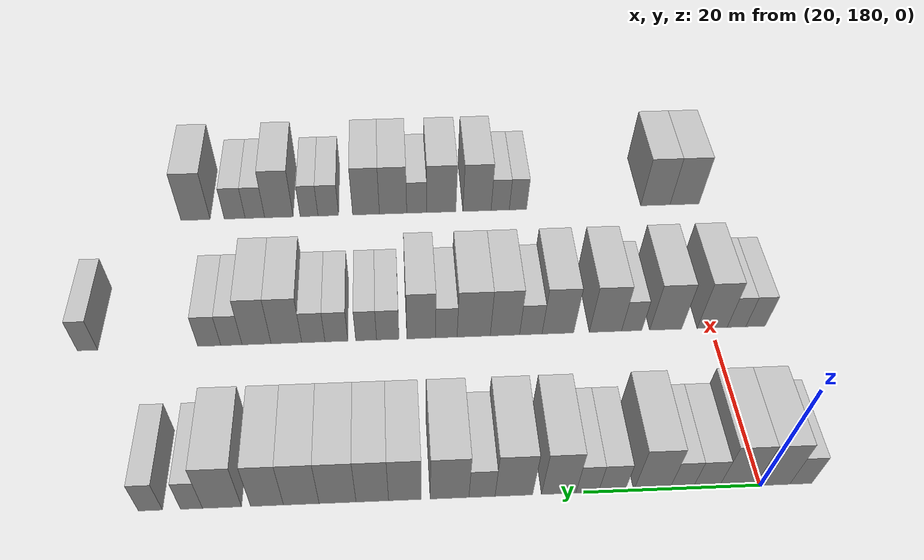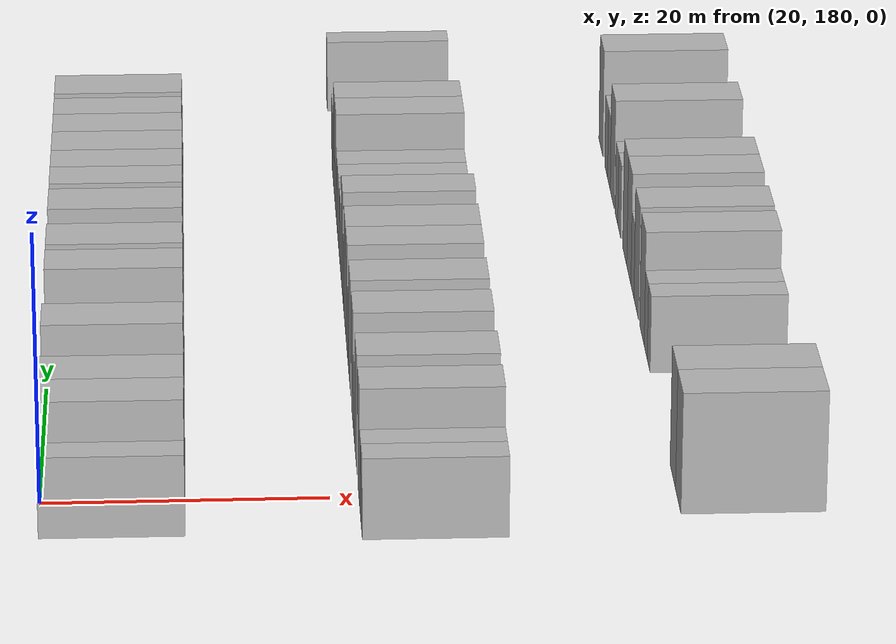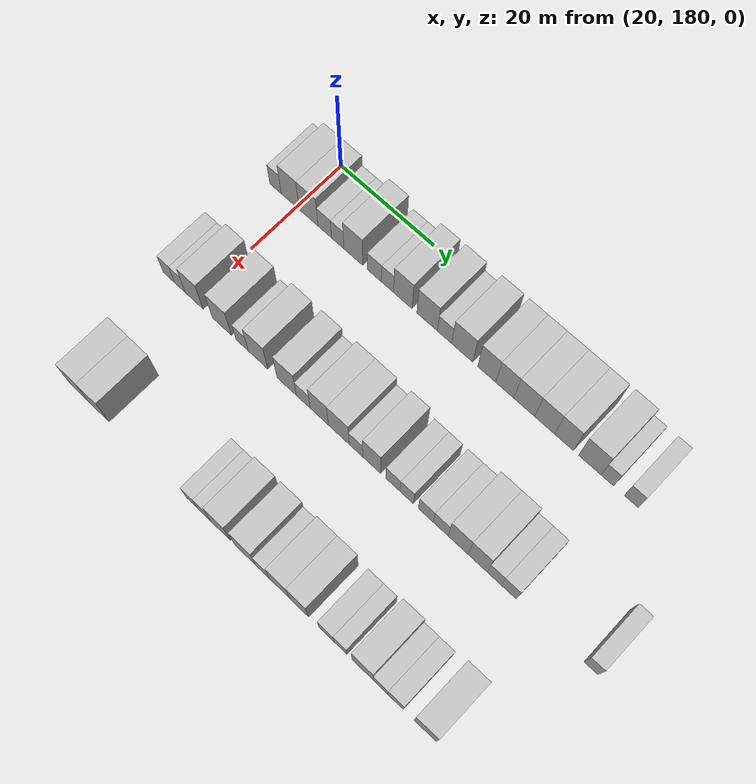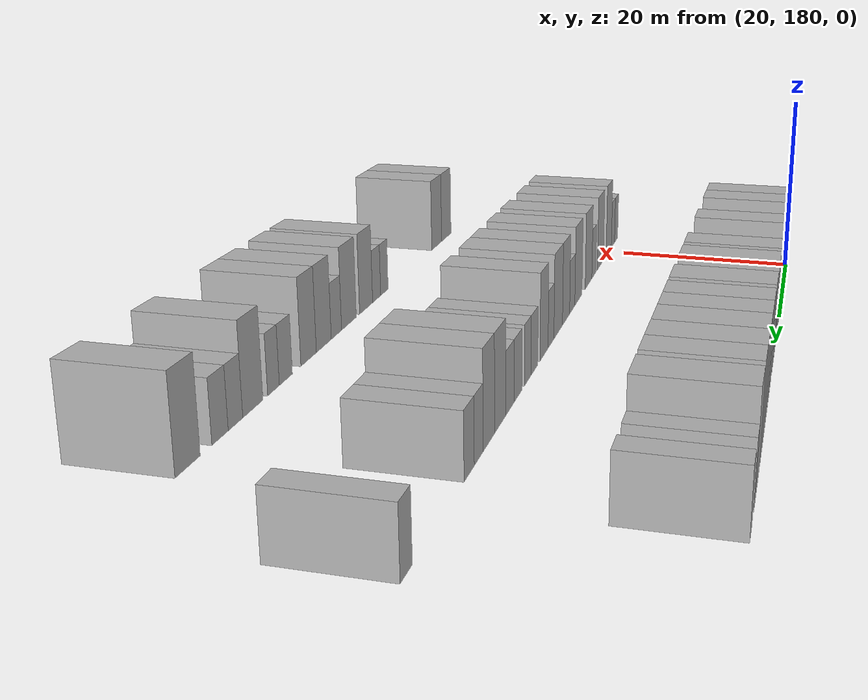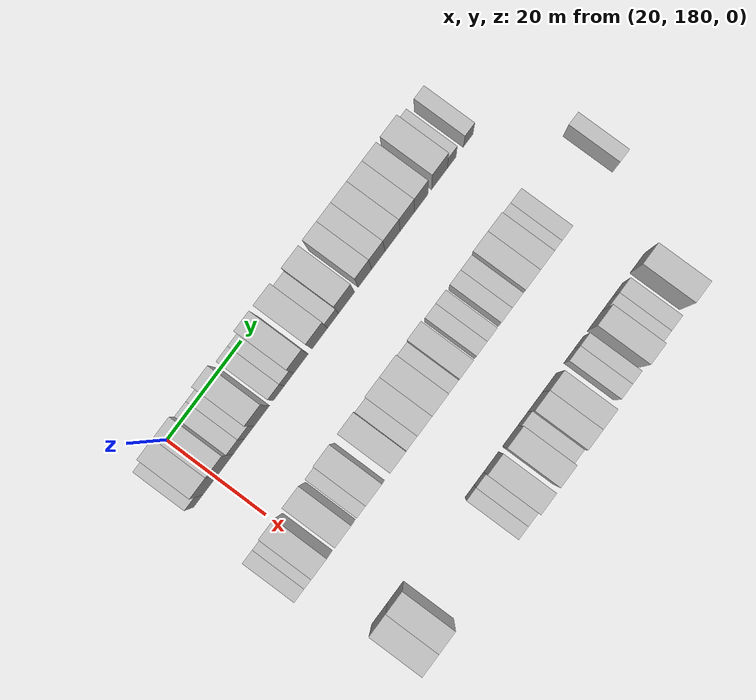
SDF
<sdf version="1.6">
 <world name="default">
  <model name="building_105">
   <static>1</static>
   <pose>25.0000 175.3583 0 0.000000 0.000000 0.000000</pose>
   <link name="link">
    <pose>0 0 3.00 0 0 0</pose>
    <collision name="collision"><geometry><box><size>10.0000 2.5309 6.0000</size></box></geometry></collision>
    <visual name="visual">
     <cast_shadows>0</cast_shadows>
     <geometry><box><size>10.0000 2.5309 6.0000</size></box></geometry>
     <material>
      <script>
       <uri>model://HANNAS_wall/materials/scripts</uri>
       <uri>model://HANNAS_wall/materials/textures</uri>
       <name>vrc/HANNAS_wall</name>
      </script>
     </material>
    </visual>
   </link>
  </model>
  <model name="building_106">
   <static>1</static>
   <pose>25.0000 178.6088 0 0.000000 0.000000 0.000000</pose>
   <link name="link">
    <pose>0 0 4.50 0 0 0</pose>
    <collision name="collision"><geometry><box><size>10.0000 3.9700 9.0000</size></box></geometry></collision>
    <visual name="visual">
     <cast_shadows>0</cast_shadows>
     <geometry><box><size>10.0000 3.9700 9.0000</size></box></geometry>
     <material>
      <script>
       <uri>model://HANNAS_wall/materials/scripts</uri>
       <uri>model://HANNAS_wall/materials/textures</uri>
       <name>vrc/HANNAS_wall</name>
      </script>
     </material>
    </visual>
   </link>
  </model>
  <model name="building_107">
   <static>1</static>
   <pose>25.0000 182.6510 0 0.000000 0.000000 0.000000</pose>
   <link name="link">
    <pose>0 0 4.50 0 0 0</pose>
    <collision name="collision"><geometry><box><size>10.0000 4.1145 9.0000</size></box></geometry></collision>
    <visual name="visual">
     <cast_shadows>0</cast_shadows>
     <geometry><box><size>10.0000 4.1145 9.0000</size></box></geometry>
     <material>
      <script>
       <uri>model://HANNAS_wall/materials/scripts</uri>
       <uri>model://HANNAS_wall/materials/textures</uri>
       <name>vrc/HANNAS_wall</name>
      </script>
     </material>
    </visual>
   </link>
  </model>
  <model name="building_108">
   <static>1</static>
   <pose>25.0000 186.1876 0 0.000000 0.000000 0.000000</pose>
   <link name="link">
    <pose>0 0 3.00 0 0 0</pose>
    <collision name="collision"><geometry><box><size>10.0000 2.9587 6.0000</size></box></geometry></collision>
    <visual name="visual">
     <cast_shadows>0</cast_shadows>
     <geometry><box><size>10.0000 2.9587 6.0000</size></box></geometry>
     <material>
      <script>
       <uri>model://HANNAS_wall/materials/scripts</uri>
       <uri>model://HANNAS_wall/materials/textures</uri>
       <name>vrc/HANNAS_wall</name>
      </script>
     </material>
    </visual>
   </link>
  </model>
  <model name="building_109">
   <static>1</static>
   <pose>25.0000 188.9838 0 0.000000 0.000000 0.000000</pose>
   <link name="link">
    <pose>0 0 3.00 0 0 0</pose>
    <collision name="collision"><geometry><box><size>10.0000 2.6336 6.0000</size></box></geometry></collision>
    <visual name="visual">
     <cast_shadows>0</cast_shadows>
     <geometry><box><size>10.0000 2.6336 6.0000</size></box></geometry>
     <material>
      <script>
       <uri>model://HANNAS_wall/materials/scripts</uri>
       <uri>model://HANNAS_wall/materials/textures</uri>
       <name>vrc/HANNAS_wall</name>
      </script>
     </material>
    </visual>
   </link>
  </model>
  <model name="building_110">
   <static>1</static>
   <pose>25.0000 192.3290 0 0.000000 0.000000 0.000000</pose>
   <link name="link">
    <pose>0 0 4.50 0 0 0</pose>
    <collision name="collision"><geometry><box><size>10.0000 4.0568 9.0000</size></box></geometry></collision>
    <visual name="visual">
     <cast_shadows>0</cast_shadows>
     <geometry><box><size>10.0000 4.0568 9.0000</size></box></geometry>
     <material>
      <script>
       <uri>model://HANNAS_wall/materials/scripts</uri>
       <uri>model://HANNAS_wall/materials/textures</uri>
       <name>vrc/HANNAS_wall</name>
      </script>
     </material>
    </visual>
   </link>
  </model>
  <model name="building_111">
   <static>1</static>
   <pose>25.0000 196.8561 0 0.000000 0.000000 0.000000</pose>
   <link name="link">
    <pose>0 0 3.00 0 0 0</pose>
    <collision name="collision"><geometry><box><size>10.0000 2.9974 6.0000</size></box></geometry></collision>
    <visual name="visual">
     <cast_shadows>0</cast_shadows>
     <geometry><box><size>10.0000 2.9974 6.0000</size></box></geometry>
     <material>
      <script>
       <uri>model://HANNAS_wall/materials/scripts</uri>
       <uri>model://HANNAS_wall/materials/textures</uri>
       <name>vrc/HANNAS_wall</name>
      </script>
     </material>
    </visual>
   </link>
  </model>
  <model name="building_112">
   <static>1</static>
   <pose>25.0000 199.6243 0 0.000000 0.000000 0.000000</pose>
   <link name="link">
    <pose>0 0 3.00 0 0 0</pose>
    <collision name="collision"><geometry><box><size>10.0000 2.5389 6.0000</size></box></geometry></collision>
    <visual name="visual">
     <cast_shadows>0</cast_shadows>
     <geometry><box><size>10.0000 2.5389 6.0000</size></box></geometry>
     <material>
      <script>
       <uri>model://HANNAS_wall/materials/scripts</uri>
       <uri>model://HANNAS_wall/materials/textures</uri>
       <name>vrc/HANNAS_wall</name>
      </script>
     </material>
    </visual>
   </link>
  </model>
  <model name="building_113">
   <static>1</static>
   <pose>25.0000 202.8253 0 0.000000 0.000000 0.000000</pose>
   <link name="link">
    <pose>0 0 4.50 0 0 0</pose>
    <collision name="collision"><geometry><box><size>10.0000 3.8630 9.0000</size></box></geometry></collision>
    <visual name="visual">
     <cast_shadows>0</cast_shadows>
     <geometry><box><size>10.0000 3.8630 9.0000</size></box></geometry>
     <material>
      <script>
       <uri>model://HANNAS_wall/materials/scripts</uri>
       <uri>model://HANNAS_wall/materials/textures</uri>
       <name>vrc/HANNAS_wall</name>
      </script>
     </material>
    </visual>
   </link>
  </model>
  <model name="building_114">
   <static>1</static>
   <pose>25.0000 207.8707 0 0.000000 0.000000 0.000000</pose>
   <link name="link">
    <pose>0 0 4.50 0 0 0</pose>
    <collision name="collision"><geometry><box><size>10.0000 4.2277 9.0000</size></box></geometry></collision>
    <visual name="visual">
     <cast_shadows>0</cast_shadows>
     <geometry><box><size>10.0000 4.2277 9.0000</size></box></geometry>
     <material>
      <script>
       <uri>model://HANNAS_wall/materials/scripts</uri>
       <uri>model://HANNAS_wall/materials/textures</uri>
       <name>vrc/HANNAS_wall</name>
      </script>
     </material>
    </visual>
   </link>
  </model>
  <model name="building_115">
   <static>1</static>
   <pose>25.0000 211.4460 0 0.000000 0.000000 0.000000</pose>
   <link name="link">
    <pose>0 0 3.00 0 0 0</pose>
    <collision name="collision"><geometry><box><size>10.0000 2.9230 6.0000</size></box></geometry></collision>
    <visual name="visual">
     <cast_shadows>0</cast_shadows>
     <geometry><box><size>10.0000 2.9230 6.0000</size></box></geometry>
     <material>
      <script>
       <uri>model://HANNAS_wall/materials/scripts</uri>
       <uri>model://HANNAS_wall/materials/textures</uri>
       <name>vrc/HANNAS_wall</name>
      </script>
     </material>
    </visual>
   </link>
  </model>
  <model name="building_116">
   <static>1</static>
   <pose>25.0000 215.0669 0 0.000000 0.000000 0.000000</pose>
   <link name="link">
    <pose>0 0 4.50 0 0 0</pose>
    <collision name="collision"><geometry><box><size>10.0000 4.3187 9.0000</size></box></geometry></collision>
    <visual name="visual">
     <cast_shadows>0</cast_shadows>
     <geometry><box><size>10.0000 4.3187 9.0000</size></box></geometry>
     <material>
      <script>
       <uri>model://HANNAS_wall/materials/scripts</uri>
       <uri>model://HANNAS_wall/materials/textures</uri>
       <name>vrc/HANNAS_wall</name>
      </script>
     </material>
    </visual>
   </link>
  </model>
  <model name="building_117">
   <static>1</static>
   <pose>25.0000 220.0444 0 0.000000 0.000000 0.000000</pose>
   <link name="link">
    <pose>0 0 4.50 0 0 0</pose>
    <collision name="collision"><geometry><box><size>10.0000 3.6362 9.0000</size></box></geometry></collision>
    <visual name="visual">
     <cast_shadows>0</cast_shadows>
     <geometry><box><size>10.0000 3.6362 9.0000</size></box></geometry>
     <material>
      <script>
       <uri>model://HANNAS_wall/materials/scripts</uri>
       <uri>model://HANNAS_wall/materials/textures</uri>
       <name>vrc/HANNAS_wall</name>
      </script>
     </material>
    </visual>
   </link>
  </model>
  <model name="building_118">
   <static>1</static>
   <pose>25.0000 223.6718 0 0.000000 0.000000 0.000000</pose>
   <link name="link">
    <pose>0 0 4.50 0 0 0</pose>
    <collision name="collision"><geometry><box><size>10.0000 3.6186 9.0000</size></box></geometry></collision>
    <visual name="visual">
     <cast_shadows>0</cast_shadows>
     <geometry><box><size>10.0000 3.6186 9.0000</size></box></geometry>
     <material>
      <script>
       <uri>model://HANNAS_wall/materials/scripts</uri>
       <uri>model://HANNAS_wall/materials/textures</uri>
       <name>vrc/HANNAS_wall</name>
      </script>
     </material>
    </visual>
   </link>
  </model>
  <model name="building_119">
   <static>1</static>
   <pose>25.0000 227.5313 0 0.000000 0.000000 0.000000</pose>
   <link name="link">
    <pose>0 0 4.50 0 0 0</pose>
    <collision name="collision"><geometry><box><size>10.0000 4.1006 9.0000</size></box></geometry></collision>
    <visual name="visual">
     <cast_shadows>0</cast_shadows>
     <geometry><box><size>10.0000 4.1006 9.0000</size></box></geometry>
     <material>
      <script>
       <uri>model://HANNAS_wall/materials/scripts</uri>
       <uri>model://HANNAS_wall/materials/textures</uri>
       <name>vrc/HANNAS_wall</name>
      </script>
     </material>
    </visual>
   </link>
  </model>
  <model name="building_120">
   <static>1</static>
   <pose>25.0000 231.5508 0 0.000000 0.000000 0.000000</pose>
   <link name="link">
    <pose>0 0 4.50 0 0 0</pose>
    <collision name="collision"><geometry><box><size>10.0000 3.9383 9.0000</size></box></geometry></collision>
    <visual name="visual">
     <cast_shadows>0</cast_shadows>
     <geometry><box><size>10.0000 3.9383 9.0000</size></box></geometry>
     <material>
      <script>
       <uri>model://HANNAS_wall/materials/scripts</uri>
       <uri>model://HANNAS_wall/materials/textures</uri>
       <name>vrc/HANNAS_wall</name>
      </script>
     </material>
    </visual>
   </link>
  </model>
  <model name="building_121">
   <static>1</static>
   <pose>25.0000 235.3366 0 0.000000 0.000000 0.000000</pose>
   <link name="link">
    <pose>0 0 4.50 0 0 0</pose>
    <collision name="collision"><geometry><box><size>10.0000 3.6332 9.0000</size></box></geometry></collision>
    <visual name="visual">
     <cast_shadows>0</cast_shadows>
     <geometry><box><size>10.0000 3.6332 9.0000</size></box></geometry>
     <material>
      <script>
       <uri>model://HANNAS_wall/materials/scripts</uri>
       <uri>model://HANNAS_wall/materials/textures</uri>
       <name>vrc/HANNAS_wall</name>
      </script>
     </material>
    </visual>
   </link>
  </model>
  <model name="building_122">
   <static>1</static>
   <pose>25.0000 240.3022 0 0.000000 0.000000 0.000000</pose>
   <link name="link">
    <pose>0 0 4.50 0 0 0</pose>
    <collision name="collision"><geometry><box><size>10.0000 4.2981 9.0000</size></box></geometry></collision>
    <visual name="visual">
     <cast_shadows>0</cast_shadows>
     <geometry><box><size>10.0000 4.2981 9.0000</size></box></geometry>
     <material>
      <script>
       <uri>model://HANNAS_wall/materials/scripts</uri>
       <uri>model://HANNAS_wall/materials/textures</uri>
       <name>vrc/HANNAS_wall</name>
      </script>
     </material>
    </visual>
   </link>
  </model>
  <model name="building_123">
   <static>1</static>
   <pose>25.0000 243.6547 0 0.000000 0.000000 0.000000</pose>
   <link name="link">
    <pose>0 0 3.00 0 0 0</pose>
    <collision name="collision"><geometry><box><size>10.0000 2.4070 6.0000</size></box></geometry></collision>
    <visual name="visual">
     <cast_shadows>0</cast_shadows>
     <geometry><box><size>10.0000 2.4070 6.0000</size></box></geometry>
     <material>
      <script>
       <uri>model://HANNAS_wall/materials/scripts</uri>
       <uri>model://HANNAS_wall/materials/textures</uri>
       <name>vrc/HANNAS_wall</name>
      </script>
     </material>
    </visual>
   </link>
  </model>
  <model name="building_124">
   <static>1</static>
   <pose>25.0000 248.1766 0 0.000000 0.000000 0.000000</pose>
   <link name="link">
    <pose>0 0 3.00 0 0 0</pose>
    <collision name="collision"><geometry><box><size>10.0000 2.6366 6.0000</size></box></geometry></collision>
    <visual name="visual">
     <cast_shadows>0</cast_shadows>
     <geometry><box><size>10.0000 2.6366 6.0000</size></box></geometry>
     <material>
      <script>
       <uri>model://HANNAS_wall/materials/scripts</uri>
       <uri>model://HANNAS_wall/materials/textures</uri>
       <name>vrc/HANNAS_wall</name>
      </script>
     </material>
    </visual>
   </link>
  </model>
  <model name="building_234">
   <static>1</static>
   <pose>47.0000 174.2824 0 0.000000 0.000000 0.000000</pose>
   <link name="link">
    <pose>0 0 3.00 0 0 0</pose>
    <collision name="collision"><geometry><box><size>10.0000 2.5477 6.0000</size></box></geometry></collision>
    <visual name="visual">
     <cast_shadows>0</cast_shadows>
     <geometry><box><size>10.0000 2.5477 6.0000</size></box></geometry>
     <material>
      <script>
       <uri>model://HANNAS_wall/materials/scripts</uri>
       <uri>model://HANNAS_wall/materials/textures</uri>
       <name>vrc/HANNAS_wall</name>
      </script>
     </material>
    </visual>
   </link>
  </model>
  <model name="building_235">
   <static>1</static>
   <pose>47.0000 176.7678 0 0.000000 0.000000 0.000000</pose>
   <link name="link">
    <pose>0 0 3.00 0 0 0</pose>
    <collision name="collision"><geometry><box><size>10.0000 2.4231 6.0000</size></box></geometry></collision>
    <visual name="visual">
     <cast_shadows>0</cast_shadows>
     <geometry><box><size>10.0000 2.4231 6.0000</size></box></geometry>
     <material>
      <script>
       <uri>model://HANNAS_wall/materials/scripts</uri>
       <uri>model://HANNAS_wall/materials/textures</uri>
       <name>vrc/HANNAS_wall</name>
      </script>
     </material>
    </visual>
   </link>
  </model>
  <model name="building_236">
   <static>1</static>
   <pose>47.0000 179.9232 0 0.000000 0.000000 0.000000</pose>
   <link name="link">
    <pose>0 0 4.50 0 0 0</pose>
    <collision name="collision"><geometry><box><size>10.0000 3.8878 9.0000</size></box></geometry></collision>
    <visual name="visual">
     <cast_shadows>0</cast_shadows>
     <geometry><box><size>10.0000 3.8878 9.0000</size></box></geometry>
     <material>
      <script>
       <uri>model://HANNAS_wall/materials/scripts</uri>
       <uri>model://HANNAS_wall/materials/textures</uri>
       <name>vrc/HANNAS_wall</name>
      </script>
     </material>
    </visual>
   </link>
  </model>
  <model name="building_237">
   <static>1</static>
   <pose>47.0000 185.9379 0 0.000000 0.000000 0.000000</pose>
   <link name="link">
    <pose>0 0 4.50 0 0 0</pose>
    <collision name="collision"><geometry><box><size>10.0000 4.1416 9.0000</size></box></geometry></collision>
    <visual name="visual">
     <cast_shadows>0</cast_shadows>
     <geometry><box><size>10.0000 4.1416 9.0000</size></box></geometry>
     <material>
      <script>
       <uri>model://HANNAS_wall/materials/scripts</uri>
       <uri>model://HANNAS_wall/materials/textures</uri>
       <name>vrc/HANNAS_wall</name>
      </script>
     </material>
    </visual>
   </link>
  </model>
  <model name="building_238">
   <static>1</static>
   <pose>47.0000 190.3274 0 0.000000 0.000000 0.000000</pose>
   <link name="link">
    <pose>0 0 3.00 0 0 0</pose>
    <collision name="collision"><geometry><box><size>10.0000 2.6373 6.0000</size></box></geometry></collision>
    <visual name="visual">
     <cast_shadows>0</cast_shadows>
     <geometry><box><size>10.0000 2.6373 6.0000</size></box></geometry>
     <material>
      <script>
       <uri>model://HANNAS_wall/materials/scripts</uri>
       <uri>model://HANNAS_wall/materials/textures</uri>
       <name>vrc/HANNAS_wall</name>
      </script>
     </material>
    </visual>
   </link>
  </model>
  <model name="building_239">
   <static>1</static>
   <pose>47.0000 193.7168 0 0.000000 0.000000 0.000000</pose>
   <link name="link">
    <pose>0 0 4.50 0 0 0</pose>
    <collision name="collision"><geometry><box><size>10.0000 4.1415 9.0000</size></box></geometry></collision>
    <visual name="visual">
     <cast_shadows>0</cast_shadows>
     <geometry><box><size>10.0000 4.1415 9.0000</size></box></geometry>
     <material>
      <script>
       <uri>model://HANNAS_wall/materials/scripts</uri>
       <uri>model://HANNAS_wall/materials/textures</uri>
       <name>vrc/HANNAS_wall</name>
      </script>
     </material>
    </visual>
   </link>
  </model>
  <model name="building_240">
   <static>1</static>
   <pose>47.0000 199.8271 0 0.000000 0.000000 0.000000</pose>
   <link name="link">
    <pose>0 0 4.50 0 0 0</pose>
    <collision name="collision"><geometry><box><size>10.0000 4.0791 9.0000</size></box></geometry></collision>
    <visual name="visual">
     <cast_shadows>0</cast_shadows>
     <geometry><box><size>10.0000 4.0791 9.0000</size></box></geometry>
     <material>
      <script>
       <uri>model://HANNAS_wall/materials/scripts</uri>
       <uri>model://HANNAS_wall/materials/textures</uri>
       <name>vrc/HANNAS_wall</name>
      </script>
     </material>
    </visual>
   </link>
  </model>
  <model name="building_241">
   <static>1</static>
   <pose>47.0000 203.3016 0 0.000000 0.000000 0.000000</pose>
   <link name="link">
    <pose>0 0 3.00 0 0 0</pose>
    <collision name="collision"><geometry><box><size>10.0000 2.8699 6.0000</size></box></geometry></collision>
    <visual name="visual">
     <cast_shadows>0</cast_shadows>
     <geometry><box><size>10.0000 2.8699 6.0000</size></box></geometry>
     <material>
      <script>
       <uri>model://HANNAS_wall/materials/scripts</uri>
       <uri>model://HANNAS_wall/materials/textures</uri>
       <name>vrc/HANNAS_wall</name>
      </script>
     </material>
    </visual>
   </link>
  </model>
  <model name="building_242">
   <static>1</static>
   <pose>47.0000 206.6138 0 0.000000 0.000000 0.000000</pose>
   <link name="link">
    <pose>0 0 4.50 0 0 0</pose>
    <collision name="collision"><geometry><box><size>10.0000 3.7547 9.0000</size></box></geometry></collision>
    <visual name="visual">
     <cast_shadows>0</cast_shadows>
     <geometry><box><size>10.0000 3.7547 9.0000</size></box></geometry>
     <material>
      <script>
       <uri>model://HANNAS_wall/materials/scripts</uri>
       <uri>model://HANNAS_wall/materials/textures</uri>
       <name>vrc/HANNAS_wall</name>
      </script>
     </material>
    </visual>
   </link>
  </model>
  <model name="building_243">
   <static>1</static>
   <pose>47.0000 210.6113 0 0.000000 0.000000 0.000000</pose>
   <link name="link">
    <pose>0 0 4.50 0 0 0</pose>
    <collision name="collision"><geometry><box><size>10.0000 4.2403 9.0000</size></box></geometry></collision>
    <visual name="visual">
     <cast_shadows>0</cast_shadows>
     <geometry><box><size>10.0000 4.2403 9.0000</size></box></geometry>
     <material>
      <script>
       <uri>model://HANNAS_wall/materials/scripts</uri>
       <uri>model://HANNAS_wall/materials/textures</uri>
       <name>vrc/HANNAS_wall</name>
      </script>
     </material>
    </visual>
   </link>
  </model>
  <model name="building_244">
   <static>1</static>
   <pose>47.0000 214.1100 0 0.000000 0.000000 0.000000</pose>
   <link name="link">
    <pose>0 0 3.00 0 0 0</pose>
    <collision name="collision"><geometry><box><size>10.0000 2.7571 6.0000</size></box></geometry></collision>
    <visual name="visual">
     <cast_shadows>0</cast_shadows>
     <geometry><box><size>10.0000 2.7571 6.0000</size></box></geometry>
     <material>
      <script>
       <uri>model://HANNAS_wall/materials/scripts</uri>
       <uri>model://HANNAS_wall/materials/textures</uri>
       <name>vrc/HANNAS_wall</name>
      </script>
     </material>
    </visual>
   </link>
  </model>
  <model name="building_245">
   <static>1</static>
   <pose>47.0000 217.2990 0 0.000000 0.000000 0.000000</pose>
   <link name="link">
    <pose>0 0 4.50 0 0 0</pose>
    <collision name="collision"><geometry><box><size>10.0000 3.6210 9.0000</size></box></geometry></collision>
    <visual name="visual">
     <cast_shadows>0</cast_shadows>
     <geometry><box><size>10.0000 3.6210 9.0000</size></box></geometry>
     <material>
      <script>
       <uri>model://HANNAS_wall/materials/scripts</uri>
       <uri>model://HANNAS_wall/materials/textures</uri>
       <name>vrc/HANNAS_wall</name>
      </script>
     </material>
    </visual>
   </link>
  </model>
  <model name="building_246">
   <static>1</static>
   <pose>47.0000 221.5348 0 0.000000 0.000000 0.000000</pose>
   <link name="link">
    <pose>0 0 3.00 0 0 0</pose>
    <collision name="collision"><geometry><box><size>10.0000 2.8506 6.0000</size></box></geometry></collision>
    <visual name="visual">
     <cast_shadows>0</cast_shadows>
     <geometry><box><size>10.0000 2.8506 6.0000</size></box></geometry>
     <material>
      <script>
       <uri>model://HANNAS_wall/materials/scripts</uri>
       <uri>model://HANNAS_wall/materials/textures</uri>
       <name>vrc/HANNAS_wall</name>
      </script>
     </material>
    </visual>
   </link>
  </model>
  <model name="building_247">
   <static>1</static>
   <pose>47.0000 224.2794 0 0.000000 0.000000 0.000000</pose>
   <link name="link">
    <pose>0 0 3.00 0 0 0</pose>
    <collision name="collision"><geometry><box><size>10.0000 2.6386 6.0000</size></box></geometry></collision>
    <visual name="visual">
     <cast_shadows>0</cast_shadows>
     <geometry><box><size>10.0000 2.6386 6.0000</size></box></geometry>
     <material>
      <script>
       <uri>model://HANNAS_wall/materials/scripts</uri>
       <uri>model://HANNAS_wall/materials/textures</uri>
       <name>vrc/HANNAS_wall</name>
      </script>
     </material>
    </visual>
   </link>
  </model>
  <model name="building_248">
   <static>1</static>
   <pose>47.0000 228.0467 0 0.000000 0.000000 0.000000</pose>
   <link name="link">
    <pose>0 0 3.00 0 0 0</pose>
    <collision name="collision"><geometry><box><size>10.0000 2.8959 6.0000</size></box></geometry></collision>
    <visual name="visual">
     <cast_shadows>0</cast_shadows>
     <geometry><box><size>10.0000 2.8959 6.0000</size></box></geometry>
     <material>
      <script>
       <uri>model://HANNAS_wall/materials/scripts</uri>
       <uri>model://HANNAS_wall/materials/textures</uri>
       <name>vrc/HANNAS_wall</name>
      </script>
     </material>
    </visual>
   </link>
  </model>
  <model name="building_249">
   <static>1</static>
   <pose>47.0000 230.9623 0 0.000000 0.000000 0.000000</pose>
   <link name="link">
    <pose>0 0 3.00 0 0 0</pose>
    <collision name="collision"><geometry><box><size>10.0000 2.9355 6.0000</size></box></geometry></collision>
    <visual name="visual">
     <cast_shadows>0</cast_shadows>
     <geometry><box><size>10.0000 2.9355 6.0000</size></box></geometry>
     <material>
      <script>
       <uri>model://HANNAS_wall/materials/scripts</uri>
       <uri>model://HANNAS_wall/materials/textures</uri>
       <name>vrc/HANNAS_wall</name>
      </script>
     </material>
    </visual>
   </link>
  </model>
  <model name="building_250">
   <static>1</static>
   <pose>47.0000 234.3671 0 0.000000 0.000000 0.000000</pose>
   <link name="link">
    <pose>0 0 4.50 0 0 0</pose>
    <collision name="collision"><geometry><box><size>10.0000 3.8741 9.0000</size></box></geometry></collision>
    <visual name="visual">
     <cast_shadows>0</cast_shadows>
     <geometry><box><size>10.0000 3.8741 9.0000</size></box></geometry>
     <material>
      <script>
       <uri>model://HANNAS_wall/materials/scripts</uri>
       <uri>model://HANNAS_wall/materials/textures</uri>
       <name>vrc/HANNAS_wall</name>
      </script>
     </material>
    </visual>
   </link>
  </model>
  <model name="building_251">
   <static>1</static>
   <pose>47.0000 238.1281 0 0.000000 0.000000 0.000000</pose>
   <link name="link">
    <pose>0 0 4.50 0 0 0</pose>
    <collision name="collision"><geometry><box><size>10.0000 3.6478 9.0000</size></box></geometry></collision>
    <visual name="visual">
     <cast_shadows>0</cast_shadows>
     <geometry><box><size>10.0000 3.6478 9.0000</size></box></geometry>
     <material>
      <script>
       <uri>model://HANNAS_wall/materials/scripts</uri>
       <uri>model://HANNAS_wall/materials/textures</uri>
       <name>vrc/HANNAS_wall</name>
      </script>
     </material>
    </visual>
   </link>
  </model>
  <model name="building_252">
   <static>1</static>
   <pose>47.0000 241.2842 0 0.000000 0.000000 0.000000</pose>
   <link name="link">
    <pose>0 0 3.00 0 0 0</pose>
    <collision name="collision"><geometry><box><size>10.0000 2.6644 6.0000</size></box></geometry></collision>
    <visual name="visual">
     <cast_shadows>0</cast_shadows>
     <geometry><box><size>10.0000 2.6644 6.0000</size></box></geometry>
     <material>
      <script>
       <uri>model://HANNAS_wall/materials/scripts</uri>
       <uri>model://HANNAS_wall/materials/textures</uri>
       <name>vrc/HANNAS_wall</name>
      </script>
     </material>
    </visual>
   </link>
  </model>
  <model name="building_253">
   <static>1</static>
   <pose>47.0000 244.0642 0 0.000000 0.000000 0.000000</pose>
   <link name="link">
    <pose>0 0 3.00 0 0 0</pose>
    <collision name="collision"><geometry><box><size>10.0000 2.8957 6.0000</size></box></geometry></collision>
    <visual name="visual">
     <cast_shadows>0</cast_shadows>
     <geometry><box><size>10.0000 2.8957 6.0000</size></box></geometry>
     <material>
      <script>
       <uri>model://HANNAS_wall/materials/scripts</uri>
       <uri>model://HANNAS_wall/materials/textures</uri>
       <name>vrc/HANNAS_wall</name>
      </script>
     </material>
    </visual>
   </link>
  </model>
  <model name="building_254">
   <static>1</static>
   <pose>47.0000 259.3161 0 0.000000 0.000000 0.000000</pose>
   <link name="link">
    <pose>0 0 3.00 0 0 0</pose>
    <collision name="collision"><geometry><box><size>10.0000 2.5360 6.0000</size></box></geometry></collision>
    <visual name="visual">
     <cast_shadows>0</cast_shadows>
     <geometry><box><size>10.0000 2.5360 6.0000</size></box></geometry>
     <material>
      <script>
       <uri>model://HANNAS_wall/materials/scripts</uri>
       <uri>model://HANNAS_wall/materials/textures</uri>
       <name>vrc/HANNAS_wall</name>
      </script>
     </material>
    </visual>
   </link>
  </model>
  <model name="building_359">
   <static>1</static>
   <pose>69.0000 178.3979 0 0.000000 0.000000 0.000000</pose>
   <link name="link">
    <pose>0 0 4.50 0 0 0</pose>
    <collision name="collision"><geometry><box><size>10.0000 4.2218 9.0000</size></box></geometry></collision>
    <visual name="visual">
     <cast_shadows>0</cast_shadows>
     <geometry><box><size>10.0000 4.2218 9.0000</size></box></geometry>
     <material>
      <script>
       <uri>model://HANNAS_wall/materials/scripts</uri>
       <uri>model://HANNAS_wall/materials/textures</uri>
       <name>vrc/HANNAS_wall</name>
      </script>
     </material>
    </visual>
   </link>
  </model>
  <model name="building_360">
   <static>1</static>
   <pose>69.0000 182.6272 0 0.000000 0.000000 0.000000</pose>
   <link name="link">
    <pose>0 0 4.50 0 0 0</pose>
    <collision name="collision"><geometry><box><size>10.0000 4.2368 9.0000</size></box></geometry></collision>
    <visual name="visual">
     <cast_shadows>0</cast_shadows>
     <geometry><box><size>10.0000 4.2368 9.0000</size></box></geometry>
     <material>
      <script>
       <uri>model://HANNAS_wall/materials/scripts</uri>
       <uri>model://HANNAS_wall/materials/textures</uri>
       <name>vrc/HANNAS_wall</name>
      </script>
     </material>
    </visual>
   </link>
  </model>
  <model name="building_361">
   <static>1</static>
   <pose>69.0000 202.4881 0 0.000000 0.000000 0.000000</pose>
   <link name="link">
    <pose>0 0 3.00 0 0 0</pose>
    <collision name="collision"><geometry><box><size>10.0000 2.4950 6.0000</size></box></geometry></collision>
    <visual name="visual">
     <cast_shadows>0</cast_shadows>
     <geometry><box><size>10.0000 2.4950 6.0000</size></box></geometry>
     <material>
      <script>
       <uri>model://HANNAS_wall/materials/scripts</uri>
       <uri>model://HANNAS_wall/materials/textures</uri>
       <name>vrc/HANNAS_wall</name>
      </script>
     </material>
    </visual>
   </link>
  </model>
  <model name="building_362">
   <static>1</static>
   <pose>69.0000 205.0445 0 0.000000 0.000000 0.000000</pose>
   <link name="link">
    <pose>0 0 3.00 0 0 0</pose>
    <collision name="collision"><geometry><box><size>10.0000 2.6177 6.0000</size></box></geometry></collision>
    <visual name="visual">
     <cast_shadows>0</cast_shadows>
     <geometry><box><size>10.0000 2.6177 6.0000</size></box></geometry>
     <material>
      <script>
       <uri>model://HANNAS_wall/materials/scripts</uri>
       <uri>model://HANNAS_wall/materials/textures</uri>
       <name>vrc/HANNAS_wall</name>
      </script>
     </material>
    </visual>
   </link>
  </model>
  <model name="building_363">
   <static>1</static>
   <pose>69.0000 208.3724 0 0.000000 0.000000 0.000000</pose>
   <link name="link">
    <pose>0 0 4.50 0 0 0</pose>
    <collision name="collision"><geometry><box><size>10.0000 4.0381 9.0000</size></box></geometry></collision>
    <visual name="visual">
     <cast_shadows>0</cast_shadows>
     <geometry><box><size>10.0000 4.0381 9.0000</size></box></geometry>
     <material>
      <script>
       <uri>model://HANNAS_wall/materials/scripts</uri>
       <uri>model://HANNAS_wall/materials/textures</uri>
       <name>vrc/HANNAS_wall</name>
      </script>
     </material>
    </visual>
   </link>
  </model>
  <model name="building_364">
   <static>1</static>
   <pose>69.0000 213.5005 0 0.000000 0.000000 0.000000</pose>
   <link name="link">
    <pose>0 0 4.50 0 0 0</pose>
    <collision name="collision"><geometry><box><size>10.0000 4.2182 9.0000</size></box></geometry></collision>
    <visual name="visual">
     <cast_shadows>0</cast_shadows>
     <geometry><box><size>10.0000 4.2182 9.0000</size></box></geometry>
     <material>
      <script>
       <uri>model://HANNAS_wall/materials/scripts</uri>
       <uri>model://HANNAS_wall/materials/textures</uri>
       <name>vrc/HANNAS_wall</name>
      </script>
     </material>
    </visual>
   </link>
  </model>
  <model name="building_365">
   <static>1</static>
   <pose>69.0000 217.0205 0 0.000000 0.000000 0.000000</pose>
   <link name="link">
    <pose>0 0 3.00 0 0 0</pose>
    <collision name="collision"><geometry><box><size>10.0000 2.8217 6.0000</size></box></geometry></collision>
    <visual name="visual">
     <cast_shadows>0</cast_shadows>
     <geometry><box><size>10.0000 2.8217 6.0000</size></box></geometry>
     <material>
      <script>
       <uri>model://HANNAS_wall/materials/scripts</uri>
       <uri>model://HANNAS_wall/materials/textures</uri>
       <name>vrc/HANNAS_wall</name>
      </script>
     </material>
    </visual>
   </link>
  </model>
  <model name="building_366">
   <static>1</static>
   <pose>69.0000 220.3762 0 0.000000 0.000000 0.000000</pose>
   <link name="link">
    <pose>0 0 4.50 0 0 0</pose>
    <collision name="collision"><geometry><box><size>10.0000 3.8898 9.0000</size></box></geometry></collision>
    <visual name="visual">
     <cast_shadows>0</cast_shadows>
     <geometry><box><size>10.0000 3.8898 9.0000</size></box></geometry>
     <material>
      <script>
       <uri>model://HANNAS_wall/materials/scripts</uri>
       <uri>model://HANNAS_wall/materials/textures</uri>
       <name>vrc/HANNAS_wall</name>
      </script>
     </material>
    </visual>
   </link>
  </model>
  <model name="building_367">
   <static>1</static>
   <pose>69.0000 224.2252 0 0.000000 0.000000 0.000000</pose>
   <link name="link">
    <pose>0 0 4.50 0 0 0</pose>
    <collision name="collision"><geometry><box><size>10.0000 3.8082 9.0000</size></box></geometry></collision>
    <visual name="visual">
     <cast_shadows>0</cast_shadows>
     <geometry><box><size>10.0000 3.8082 9.0000</size></box></geometry>
     <material>
      <script>
       <uri>model://HANNAS_wall/materials/scripts</uri>
       <uri>model://HANNAS_wall/materials/textures</uri>
       <name>vrc/HANNAS_wall</name>
      </script>
     </material>
    </visual>
   </link>
  </model>
  <model name="building_368">
   <static>1</static>
   <pose>69.0000 229.5955 0 0.000000 0.000000 0.000000</pose>
   <link name="link">
    <pose>0 0 3.00 0 0 0</pose>
    <collision name="collision"><geometry><box><size>10.0000 2.9324 6.0000</size></box></geometry></collision>
    <visual name="visual">
     <cast_shadows>0</cast_shadows>
     <geometry><box><size>10.0000 2.9324 6.0000</size></box></geometry>
     <material>
      <script>
       <uri>model://HANNAS_wall/materials/scripts</uri>
       <uri>model://HANNAS_wall/materials/textures</uri>
       <name>vrc/HANNAS_wall</name>
      </script>
     </material>
    </visual>
   </link>
  </model>
  <model name="building_369">
   <static>1</static>
   <pose>69.0000 232.3268 0 0.000000 0.000000 0.000000</pose>
   <link name="link">
    <pose>0 0 3.00 0 0 0</pose>
    <collision name="collision"><geometry><box><size>10.0000 2.5302 6.0000</size></box></geometry></collision>
    <visual name="visual">
     <cast_shadows>0</cast_shadows>
     <geometry><box><size>10.0000 2.5302 6.0000</size></box></geometry>
     <material>
      <script>
       <uri>model://HANNAS_wall/materials/scripts</uri>
       <uri>model://HANNAS_wall/materials/textures</uri>
       <name>vrc/HANNAS_wall</name>
      </script>
     </material>
    </visual>
   </link>
  </model>
  <model name="building_370">
   <static>1</static>
   <pose>69.0000 236.6085 0 0.000000 0.000000 0.000000</pose>
   <link name="link">
    <pose>0 0 4.50 0 0 0</pose>
    <collision name="collision"><geometry><box><size>10.0000 4.0331 9.0000</size></box></geometry></collision>
    <visual name="visual">
     <cast_shadows>0</cast_shadows>
     <geometry><box><size>10.0000 4.0331 9.0000</size></box></geometry>
     <material>
      <script>
       <uri>model://HANNAS_wall/materials/scripts</uri>
       <uri>model://HANNAS_wall/materials/textures</uri>
       <name>vrc/HANNAS_wall</name>
      </script>
     </material>
    </visual>
   </link>
  </model>
  <model name="building_371">
   <static>1</static>
   <pose>69.0000 240.0033 0 0.000000 0.000000 0.000000</pose>
   <link name="link">
    <pose>0 0 3.00 0 0 0</pose>
    <collision name="collision"><geometry><box><size>10.0000 2.7565 6.0000</size></box></geometry></collision>
    <visual name="visual">
     <cast_shadows>0</cast_shadows>
     <geometry><box><size>10.0000 2.7565 6.0000</size></box></geometry>
     <material>
      <script>
       <uri>model://HANNAS_wall/materials/scripts</uri>
       <uri>model://HANNAS_wall/materials/textures</uri>
       <name>vrc/HANNAS_wall</name>
      </script>
     </material>
    </visual>
   </link>
  </model>
  <model name="building_372">
   <static>1</static>
   <pose>69.0000 242.8545 0 0.000000 0.000000 0.000000</pose>
   <link name="link">
    <pose>0 0 3.00 0 0 0</pose>
    <collision name="collision"><geometry><box><size>10.0000 2.9459 6.0000</size></box></geometry></collision>
    <visual name="visual">
     <cast_shadows>0</cast_shadows>
     <geometry><box><size>10.0000 2.9459 6.0000</size></box></geometry>
     <material>
      <script>
       <uri>model://HANNAS_wall/materials/scripts</uri>
       <uri>model://HANNAS_wall/materials/textures</uri>
       <name>vrc/HANNAS_wall</name>
      </script>
     </material>
    </visual>
   </link>
  </model>
  <model name="building_373">
   <static>1</static>
   <pose>69.0000 248.3813 0 0.000000 0.000000 0.000000</pose>
   <link name="link">
    <pose>0 0 4.50 0 0 0</pose>
    <collision name="collision"><geometry><box><size>10.0000 4.1075 9.0000</size></box></geometry></collision>
    <visual name="visual">
     <cast_shadows>0</cast_shadows>
     <geometry><box><size>10.0000 4.1075 9.0000</size></box></geometry>
     <material>
      <script>
       <uri>model://HANNAS_wall/materials/scripts</uri>
       <uri>model://HANNAS_wall/materials/textures</uri>
       <name>vrc/HANNAS_wall</name>
      </script>
     </material>
    </visual>
   </link>
  </model>
 </world>
</sdf>
